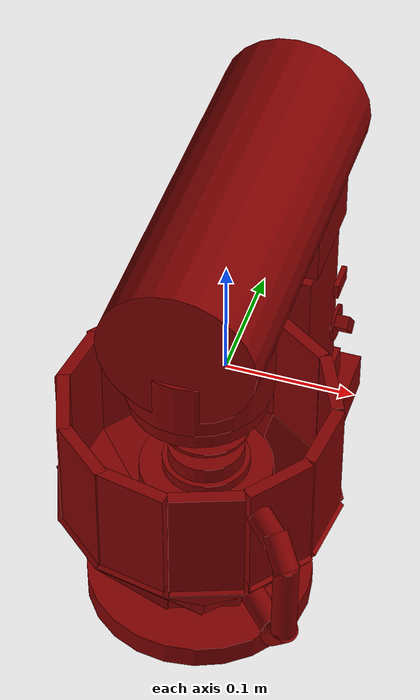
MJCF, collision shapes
<?xml version='1.0' encoding='UTF-8'?>
<mujoco model="model">
  <compiler angle="radian"/>
  <asset>
    <mesh file="visuals/Blade001.obj" name="Blade001_vis"/>
    <mesh file="visuals/Body001.obj" name="Body001_vis"/>
    <mesh file="visuals/Button001.obj" name="Button001_vis"/>
    <mesh file="visuals/Container001.obj" name="Container001_vis"/>
    <mesh file="visuals/Knob001.obj" name="Knob001_vis"/>
    <mesh file="visuals/Lid001.obj" name="Lid001_vis"/>
    <texture file="visuals/T_BC001.png" name="Body001_material" type="2d"/>
    <material name="Body001_material" rgba="1 1 1 1.0" texture="Body001_material" shininess="0.5" specular="0.3103448502657381"/>
    <texture file="visuals/T_BC001.png" name="Button001_material" type="2d"/>
    <material name="Button001_material" rgba="1 1 1 1.0" texture="Button001_material" shininess="0.5" specular="0.3103448502657381"/>
    <texture file="visuals/T_BC001.png" name="Container001_material" type="2d"/>
    <material name="Container001_material" rgba="1 1 1 1.0" texture="Container001_material" shininess="5" specular="5"/>
    <texture file="visuals/T_BC001.png" name="Knob001_material" type="2d"/>
    <material name="Knob001_material" rgba="1 1 1 1.0" texture="Knob001_material" shininess="0.5" specular="0.3103448502657381"/>
    <texture file="visuals/T_BC001.png" name="Lid001_material" type="2d"/>
    <material name="Lid001_material" rgba="1 1 1 1.0" texture="Lid001_material" shininess="0.5" specular="0.3103448502657381"/>
    <texture file="visuals/T_BC001.png" name="Blade001_material" type="2d"/>
    <material name="Blade001_material" rgba="1 1 1 1.0" texture="Blade001_material" shininess="5" specular="5"/>
  </asset>
  <default>
    <default class="visual">
      <geom conaffinity="0" contype="0" group="1" type="mesh"/>
    </default>
    <default class="collision">
      <geom group="0" rgba="0.5 0 0 0.5"/>
    </default>
    <default class="spawn">
      <geom group="0" rgba="1 1 1 0.5" contype="0" conaffinity="0"/>
      <site group="0" rgba="1 1 1 0.5"/>
    </default>
    <default class="region">
      <geom group="1" conaffinity="0" contype="0" rgba="0 1 0 0"/>
    </default>
  </default>
  <worldbody>
    <body>
      <body name="object">
        <geom mesh="Body001_vis" type="mesh" solimp="0.998 0.998 0.001" solref="0.001 1" density="100" friction="0.95 0.3 0.1" class="visual" material="Body001_material"/>
        <geom class="collision" type="cylinder" pos="-0.00022848104708828032 -0.064354307949543 -0.16482660174369812" size="0.08874775469303131 0.009711392223834991" quat="0.7071068286895752 0.0 0.0 0.7071067094802856"/>
        <geom class="collision" type="box" pos="-0.005762792192399502 0.11128920316696167 -0.039861973375082016" size="0.04039444401860237 0.05158252269029617 0.07252521067857742" quat="0.7071068286895752 0.0 0.0 0.7071067094802856"/>
        <geom class="collision" type="box" pos="0.0004865553055424243 0.08999951183795929 -0.15792568027973175" size="0.09048203378915787 0.06246824935078621 0.016619961708784103" quat="0.7071068286895752 0.0 0.0 0.7071067094802856"/>
        <geom class="collision" type="box" pos="-0.0033176415599882603 0.09539289772510529 -0.12879902124404907" size="0.060838695615530014 0.05402767285704613 0.016619961708784103" quat="0.7071068286895752 0.0 0.0 0.7071067094802856"/>
        <body name="Button001">
          <joint axis="-1.0 0.0 0.0" pos="0.05825059860944748 0.10862969607114792 0.007413100451231003" limited="true" name="Button001_joint" range="0.0 0.002" type="slide" damping="1" frictionloss="1" armature=".01" stiffness="0.05"/>
          <geom mesh="Button001_vis" type="mesh" solimp="0.998 0.998 0.001" solref="0.001 1" density="100" friction="0.95 0.3 0.1" class="visual" material="Button001_material"/>
          <geom class="collision" type="box" pos="0.059242475777864456 0.10862969607114792 0.007413100451231003" size="0.012191162444651127 0.0020922389812767506 0.006317922379821539" quat="0.7071068286895752 0.0 0.0 0.7071067094802856"/>
        </body>
        <body name="Container001">
          <joint axis="0.0 0.0 1.0" pos="-1.867354804119259e-08 -0.07018712162971497 -0.06166842579841614" limited="true" name="Container001_joint" range="0.0 0.1" type="slide" damping="1" frictionloss="1" armature=".01" stiffness="0.05"/>
          <geom mesh="Container001_vis" type="mesh" solimp="0.998 0.998 0.001" solref="0.001 1" density="100" friction="0.95 0.3 0.1" class="visual" material="Container001_material"/>
          <geom class="collision" type="cylinder" pos="0.07480400055646896 -0.14703887701034546 -0.08960401266813278" size="0.009424982592463493 0.02030491828918457" quat="0.49441301822662354 -0.7058183550834656 0.04193372651934624 0.505586564540863"/>
          <geom class="collision" type="cylinder" pos="0.09387672692537308 -0.16765083372592926 0.0016370464581996202" size="0.009424983523786068 0.014377474784851074" quat="0.634695827960968 -0.42688503861427307 0.03379013016819954 0.6432639956474304"/>
          <geom class="collision" type="cylinder" pos="0.0790802389383316 -0.15174829959869385 0.005853107664734125" size="0.009424982592463493 0.014377474784851074" quat="0.49441301822662354 -0.7058183550834656 0.04193372651934624 0.505586564540863"/>
          <geom class="collision" type="cylinder" pos="0.09452018141746521 -0.16874229907989502 -0.084271639585495" size="0.009424982592463493 0.01623125746846199" quat="0.20755493640899658 -0.943259596824646 0.06560474634170532 0.2507554888725281"/>
          <geom class="collision" type="cylinder" pos="0.09957893192768097 -0.17388378083705902 -0.03928923234343529" size="0.009424983523786068 0.035405486822128296" quat="0.7220362424850464 -0.0005324371159076691 0.0035060904920101166 0.6918461322784424"/>
          <geom class="collision" type="box" pos="0.09834914654493332 -0.07533300668001175 -0.021147072315216064" size="0.02756338007748127 0.004887496121227741 0.05233755335211754" quat="0.7472476959228516 0.0 0.0 0.6645455956459045"/>
          <geom class="collision" type="box" pos="0.07227533310651779 -0.07226771861314774 -0.10825107246637344" size="0.02756338380277157 0.004887495655566454 0.05233755335211754" quat="0.7119936943054199 0.22681300342082977 0.20171034336090088 0.63319331407547"/>
          <geom class="collision" type="box" pos="0.06488372385501862 -0.03282260149717331 -0.10825107246637344" size="0.02756338380277157 0.004887495655566454 0.05233755335211754" quat="0.5105448365211487 0.16263940930366516 0.25628039240837097 0.8044953346252441"/>
          <geom class="collision" type="box" pos="0.08863841742277145 -0.021644309163093567 -0.021147072315216064" size="0.02756337821483612 0.004887495655566454 0.05233755335211754" quat="0.5358242392539978 0.0 0.0 0.8443295359611511"/>
          <geom class="collision" type="box" pos="0.05301034078001976 0.018176142126321793 -0.021147072315216064" size="0.02756338007748127 0.004887496121227741 0.05233755335211754" quat="0.28878554701805115 0.0 0.0 0.9573938250541687"/>
          <geom class="collision" type="box" pos="0.03849320113658905 -0.0036983219906687737 -0.10825107246637344" size="0.02756338380277157 0.004887495655566454 0.05233755335211754" quat="0.27516108751296997 0.0876554399728775 0.29059889912605286 0.9122254252433777"/>
          <geom class="collision" type="box" pos="0.002621553372591734 0.007470749318599701 -0.10825107246637344" size="0.02756338380277157 0.004887496121227741 0.05233755707740784" quat="0.031179768964648247 0.009932637214660645 0.30336880683898926 0.9523111581802368"/>
          <geom class="collision" type="box" pos="0.004338837694376707 0.0336679071187973 -0.021147072315216064" size="0.02756338007748127 0.004887496121227741 0.05233755335211754" quat="0.032723501324653625 0.0 0.0 0.9994644522666931"/>
          <geom class="collision" type="box" pos="-0.044060323387384415 0.023671474307775497 -0.021147072315216064" size="0.02756337821483612 0.004887495655566454 0.05233755335211754" quat="0.21712905168533325 0.0 -0.0 -0.9761428833007812"/>
          <geom class="collision" type="box" pos="-0.03293156996369362 -0.00010646630835253745 -0.10825107246637344" size="0.02756338194012642 0.004887496121227741 0.05233755335211754" quat="0.20688532292842865 0.06590550392866135 -0.29628995060920715 -0.9300898909568787"/>
          <geom class="collision" type="box" pos="-0.05990442633628845 -0.023149989545345306 -0.10825107246637344" size="0.027563385665416718 0.004887495655566454 0.05233755335211754" quat="0.42665916681289673 0.13591666519641876 -0.2713998258113861 -0.8519570231437683"/>
          <geom class="collision" type="box" pos="-0.08092723786830902 -0.007424814160913229 -0.021147072315216064" size="0.02756337821483612 0.004887495655566454 0.05233755335211754" quat="0.4477851688861847 0.0 -0.0 -0.8941411972045898"/>
          <geom class="collision" type="box" pos="-0.0988556370139122 -0.05276840925216675 -0.021147072315216064" size="0.02756338007748127 0.004887496121227741 0.05233755335211754" quat="0.6536893844604492 0.0 -0.0 -0.7567629814147949"/>
          <geom class="collision" type="box" pos="-0.07288117706775665 -0.05658512935042381 -0.10825107246637344" size="0.02756338380277157 0.004887495655566454 0.05233755335211754" quat="0.6228494644165039 0.19841518998146057 -0.22970114648342133 -0.7210598587989807"/>
          <geom class="collision" type="box" pos="-0.06846462190151215 -0.09192422032356262 -0.10825107246637344" size="0.02756338380277157 0.004887496121227741 0.05233755335211754" quat="0.779908299446106 0.2484479546546936 -0.17436981201171875 -0.5473681092262268"/>
          <geom class="collision" type="box" pos="-0.09315428137779236 -0.10084950178861618 -0.021147072315216064" size="0.02756337821483612 0.004887495655566454 0.05233755335211754" quat="0.8185250759124756 0.0 0.0 -0.5744708180427551"/>
          <geom class="collision" type="box" pos="-0.0638885647058487 -0.1417829990386963 -0.021147072315216064" size="0.02756338007748127 0.004887496121227741 0.05233755335211754" quat="0.9374102354049683 0.0 0.0 -0.34822702407836914"/>
          <geom class="collision" type="box" pos="-0.046748705208301544 -0.12189668416976929 -0.10825107246637344" size="0.02756338380277157 0.004887496121227741 0.05233755335211754" quat="0.8931846618652344 0.2845332622528076 -0.10569779574871063 -0.33179810643196106"/>
          <geom class="collision" type="box" pos="-0.013200786896049976 -0.13735437393188477 -0.10825107246637344" size="0.027563385665416718 0.004887496121227741 0.05233755335211754" quat="0.9480680227279663 0.3020169138908386 -0.03028135374188423 -0.09505688399076462"/>
          <geom class="collision" type="box" pos="-0.018412910401821136 -0.16308516263961792 -0.021147072315216064" size="0.02756338007748127 0.004887496121227741 0.05233755335211754" quat="0.9950111508369446 0.0 0.0 -0.09976369142532349"/>
          <geom class="collision" type="box" pos="0.03538268432021141 -0.15804971754550934 -0.021147072315216064" size="0.02756338007748127 0.004887496121227741 0.05233755335211754" quat="0.9845998287200928 0.0 0.0 0.1748233586549759"/>
          <geom class="collision" type="box" pos="0.026344632729887962 -0.13340112566947937 -0.10825107246637344" size="0.02756338380277157 0.004887495655566454 0.05233755335211754" quat="0.9381478428840637 0.29885679483413696 0.05306435748934746 0.16657553613185883"/>
          <geom class="collision" type="box" pos="0.05820024013519287 -0.10899805277585983 -0.10825107246637344" size="0.027563385665416718 0.004887496121227741 0.05233755335211754" quat="0.8562464118003845 0.27276623249053955 0.1331532895565033 0.41798433661460876"/>
          <geom class="collision" type="box" pos="0.0788993239402771 -0.12514697015285492 -0.021147072315216064" size="0.02756338007748127 0.004887496121227741 0.05233755335211754" quat="0.8986430168151855 0.0 0.0 0.4386807084083557"/>
        </body>
        <body name="Knob001">
          <joint axis="-1.0 0.0 0.0" pos="0.06188736855983734 0.10826413333415985 -0.0363365076482296" limited="true" name="Knob001_joint" range="0.0 4.590215932745086" type="hinge" damping="0.05" armature="0.001"/>
          <geom mesh="Knob001_vis" type="mesh" solimp="0.998 0.998 0.001" solref="0.001 1" density="100" friction="0.95 0.3 0.1" class="visual" material="Knob001_material"/>
          <geom class="collision" type="cylinder" pos="0.057881858199834824 0.10826413333415985 -0.0363365076482296" size="0.01483010035008192 0.0011637858115136623" quat="0.5000000596046448 0.5 0.4999999701976776 0.5"/>
          <geom class="collision" type="box" pos="0.06436283886432648 0.10826413333415985 -0.0363365076482296" size="0.013882497325539589 0.0054029677994549274 0.005205981899052858" quat="0.6408564448356628 -0.29883626103401184 0.29883620142936707 0.6408563256263733"/>
        </body>
        <body name="Lid001">
          <joint axis="-1.0 0.0 0.0" pos="-0.0003941244212910533 0.14914104342460632 0.034669242799282074" limited="true" name="Lid001_joint" range="0.0 1.5707963267948966" type="hinge" damping="1" frictionloss="1" armature=".01" stiffness="0.05"/>
          <geom mesh="Lid001_vis" type="mesh" solimp="0.998 0.998 0.001" solref="0.001 1" density="100" friction="0.95 0.3 0.1" class="visual" material="Lid001_material"/>
          <geom class="collision" type="box" pos="0.005692340899258852 -0.06435514241456985 0.02657683752477169" size="0.01429824996739626 0.03572718799114227 0.004843821283429861" quat="0.7071068286895752 0.0 0.0 0.7071067094802856"/>
          <geom class="collision" type="cylinder" pos="-0.0007112391758710146 -0.06440814584493637 0.03916678950190544" size="0.05252593010663986 0.008868275210261345" quat="5.338507591545749e-08 0.7071067690849304 -0.7071068286895752 5.338507591545749e-08"/>
          <geom class="collision" type="cylinder" pos="-0.0007112318417057395 0.03275151923298836 0.11570223420858383" size="0.05984557047486305 0.15002548694610596" quat="0.5000000596046448 0.5 -0.5 0.4999999701976776"/>
          <geom class="collision" type="cylinder" pos="-0.0007112391758710146 -0.06440814584493637 0.06875722110271454" size="0.05610077828168869 0.02321208082139492" quat="5.338507591545749e-08 0.7071067690849304 -0.7071068286895752 5.338507591545749e-08"/>
          <geom class="collision" type="box" pos="-0.003317640395835042 0.11208942532539368 0.06002816930413246" size="0.04045430198311806 0.05402767285704613 0.02022590860724449" quat="0.7071068286895752 0.0 0.0 0.7071067094802856"/>
          <body name="Blade001">
            <joint axis="0.0 0.0 1.0" pos="0.005285596940666437 -0.06437551975250244 -0.06018798053264618" limited="false" name="Blade001_joint" range="0 360" type="hinge" damping="1" frictionloss="1" armature=".01" stiffness="0.05"/>
            <geom mesh="Blade001_vis" type="mesh" solimp="0.998 0.998 0.001" solref="0.001 1" density="100" friction="0.95 0.3 0.1" class="visual" material="Blade001_material"/>
            <geom class="collision" type="cylinder" pos="0.005463118199259043 -0.06512968242168427 0.011573953554034233" size="0.009037850424647331 0.007443954236805439" quat="5.338507591545749e-08 0.7071067690849304 -0.7071068286895752 5.338507591545749e-08"/>
            <geom class="collision" type="cylinder" pos="0.005463118199259043 -0.06512968242168427 -0.0240495465695858" size="0.029054420068860054 0.007450357545167208" quat="5.338507236274381e-08 0.7071067690849304 -0.7071068286895752 5.338508302088485e-08"/>
            <geom class="collision" type="cylinder" pos="0.005463118199259043 -0.06512968987226486 -0.007977092638611794" size="0.01264073047786951 0.009584451094269753" quat="5.338507591545749e-08 0.7071067690849304 -0.7071068286895752 5.338507591545749e-08"/>
            <geom class="collision" type="cylinder" pos="0.005463118199259043 -0.06512968242168427 0.0026307376101613045" size="0.0328192412853241 0.0014842669479548931" quat="5.338507591545749e-08 0.7071067690849304 -0.7071068286895752 5.338507591545749e-08"/>
            <geom class="collision" type="cylinder" pos="0.005463118199259043 -0.06512968987226486 -0.05898091197013855" size="0.0509517565369606 0.02066851034760475" quat="5.338507591545749e-08 0.7071067690849304 -0.7071068286895752 5.338507591545749e-08"/>
            <geom class="collision" type="cylinder" pos="0.005463118199259043 -0.06512968987226486 -0.08023826032876968" size="0.03422026336193085 0.017157116904854774" quat="5.338507591545749e-08 0.7071067690849304 -0.7071068286895752 5.338507591545749e-08"/>
            <geom class="collision" type="cylinder" pos="0.005463118199259043 -0.06512968242168427 -0.034959301352500916" size="0.03334075212478638 0.004949826747179031" quat="5.338507236274381e-08 0.7071067690849304 -0.7071068286895752 5.338508302088485e-08"/>
          </body>
        </body>
        <geom class="region" name="reg_main" type="box" pos="-0.00019919394981116056 0.014967231079936028 0.0" size="0.08777549862861633 0.16728034615516663 0.17491218447685242"/>
      </body>
    </body>
  </worldbody>
  <actuator>
    <motor name="Button001_joint_actuator" joint="Button001_joint" gear="0.1"/>
    <motor name="Container001_joint_actuator" joint="Container001_joint" gear="20"/>
    <motor name="Knob001_joint_actuator" joint="Knob001_joint" gear="10"/>
    <motor name="Lid001_joint_actuator" joint="Lid001_joint" gear="20"/>
    <motor name="Blade001_joint_actuator" joint="Blade001_joint" gear="10"/>
  </actuator>
</mujoco>
